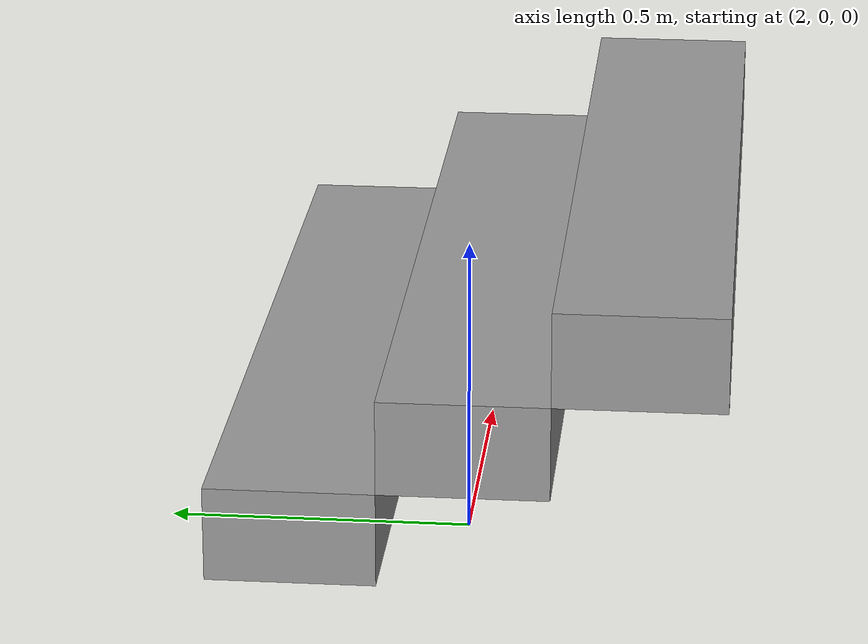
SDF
<?xml version='1.0'?>
<sdf version='1.6'>
  <model name='stairs_built'>
    <pose frame=''>2.5 -0.01 0 0 -0 0</pose>
    <link name='Stairs_1'>
      <visual name='Stairs_1_Visual_0'>
        <pose frame=''>0 0.28 0.08 0 -0 0</pose>
        <geometry>
          <box>
            <size>1.5 0.28 0.16</size>
          </box>
        </geometry>
        <material>
          <script>
            <uri>file://media/materials/scripts/gazebo.material</uri>
            <name>Gazebo/Grey</name>
          </script>
          <ambient>1 1 1 1</ambient>
        </material>
      </visual>
      <collision name='Stairs_1_Collision_0'>
        <geometry>
          <box>
            <size>1.5 0.28 0.16</size>
          </box>
        </geometry>
        <pose frame=''>0 0.28 0.08 0 -0 0</pose>
      </collision>
      <visual name='Stairs_1_Visual_1'>
        <pose frame=''>0 -0 0.24 0 -0 0</pose>
        <geometry>
          <box>
            <size>1.5 0.28 0.16</size>
          </box>
        </geometry>
        <material>
          <script>
            <uri>file://media/materials/scripts/gazebo.material</uri>
            <name>Gazebo/Grey</name>
          </script>
          <ambient>1 1 1 1</ambient>
        </material>
      </visual>
      <collision name='Stairs_1_Collision_1'>
        <geometry>
          <box>
            <size>1.5 0.28 0.16</size>
          </box>
        </geometry>
        <pose frame=''>0 -0 0.24 0 -0 0</pose>
      </collision>
      <visual name='Stairs_1_Visual_2'>
        <pose frame=''>0 -0.28 0.4 0 -0 0</pose>
        <geometry>
          <box>
            <size>1.5 0.28 0.16</size>
          </box>
        </geometry>
        <material>
          <script>
            <uri>file://media/materials/scripts/gazebo.material</uri>
            <name>Gazebo/Grey</name>
          </script>
          <ambient>1 1 1 1</ambient>
        </material>
      </visual>
      <collision name='Stairs_1_Collision_2'>
        <geometry>
          <box>
            <size>1.5 0.28 0.16</size>
          </box>
        </geometry>
        <pose frame=''>0 -0.28 0.4 0 -0 0</pose>
      </collision>
    </link>
    <static>1</static>
  </model>
</sdf>
